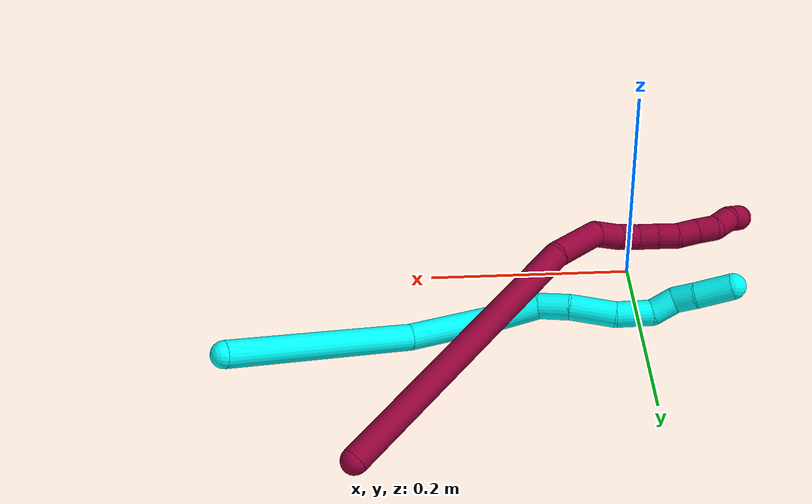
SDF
<sdf version="1.7">
 <world name="default">
  <model name="3">
   <static>0</static>
   <link name="3">
    <collision name="collision-cylinder-e_1_1_4">
     <pose>-0.007227 0.005141 -0.089758 -3.08438 -0.080208 1.9027</pose>
     <geometry><cylinder><radius>0.0125</radius><length>0.18039</length></cylinder></geometry>
     <surface>
      <friction><ode><mu>1.16</mu><mu2>1.16</mu2><slip1>0</slip1><slip2>0</slip2></ode></friction>
      <contact><ode><kp>1e+06</kp><kd>1</kd><max_vel>0</max_vel><min_depth>0.001</min_depth></ode></contact>
     </surface>
    </collision>
    <visual name="visual-cylinder-e_1_1_4">
     <pose>-0.007227 0.005141 -0.089758 -3.08438 -0.080208 1.9027</pose>
     <geometry><cylinder><radius>0.0125</radius><length>0.18039</length></cylinder></geometry>
     <material><ambient>0.003922 1 0.996078 1</ambient></material>
    </visual>
    <collision name="collision-cylinder-e_2_4_5">
     <pose>-0.030739 0.012932 -0.219505 -3.07539 -0.385987 2.80589</pose>
     <geometry><cylinder><radius>0.0125</radius><length>0.08652</length></cylinder></geometry>
     <surface>
      <friction><ode><mu>1.16</mu><mu2>1.16</mu2><slip1>0</slip1><slip2>0</slip2></ode></friction>
      <contact><ode><kp>1e+06</kp><kd>1</kd><max_vel>0</max_vel><min_depth>0.001</min_depth></ode></contact>
     </surface>
    </collision>
    <visual name="visual-cylinder-e_2_4_5">
     <pose>-0.030739 0.012932 -0.219505 -3.07539 -0.385987 2.80589</pose>
     <geometry><cylinder><radius>0.0125</radius><length>0.08652</length></cylinder></geometry>
     <material><ambient>0.003922 1 0.996078 1</ambient></material>
    </visual>
    <collision name="collision-cylinder-e_3_5_6">
     <pose>-0.060938 0.018299 -0.275225 -2.97066 -0.716851 2.69192</pose>
     <geometry><cylinder><radius>0.0125</radius><length>0.042349</length></cylinder></geometry>
     <surface>
      <friction><ode><mu>1.16</mu><mu2>1.16</mu2><slip1>0</slip1><slip2>0</slip2></ode></friction>
      <contact><ode><kp>1e+06</kp><kd>1</kd><max_vel>0</max_vel><min_depth>0.001</min_depth></ode></contact>
     </surface>
    </collision>
    <visual name="visual-cylinder-e_3_5_6">
     <pose>-0.060938 0.018299 -0.275225 -2.97066 -0.716851 2.69192</pose>
     <geometry><cylinder><radius>0.0125</radius><length>0.042349</length></cylinder></geometry>
     <material><ambient>0.003922 1 0.996078 1</ambient></material>
    </visual>
    <collision name="collision-cylinder-e_4_6_7">
     <pose>-0.084 0.027866 -0.300869 -2.53684 -0.649417 1.64688</pose>
     <geometry><cylinder><radius>0.0125</radius><length>0.030262</length></cylinder></geometry>
     <surface>
      <friction><ode><mu>1.16</mu><mu2>1.16</mu2><slip1>0</slip1><slip2>0</slip2></ode></friction>
      <contact><ode><kp>1e+06</kp><kd>1</kd><max_vel>0</max_vel><min_depth>0.001</min_depth></ode></contact>
     </surface>
    </collision>
    <visual name="visual-cylinder-e_4_6_7">
     <pose>-0.084 0.027866 -0.300869 -2.53684 -0.649417 1.64688</pose>
     <geometry><cylinder><radius>0.0125</radius><length>0.030262</length></cylinder></geometry>
     <material><ambient>0.003922 1 0.996078 1</ambient></material>
    </visual>
    <collision name="collision-cylinder-e_5_7_8">
     <pose>-0.103274 0.04606 -0.326653 -2.52106 -0.478754 1.30125</pose>
     <geometry><cylinder><radius>0.0125</radius><length>0.043957</length></cylinder></geometry>
     <surface>
      <friction><ode><mu>1.16</mu><mu2>1.16</mu2><slip1>0</slip1><slip2>0</slip2></ode></friction>
      <contact><ode><kp>1e+06</kp><kd>1</kd><max_vel>0</max_vel><min_depth>0.001</min_depth></ode></contact>
     </surface>
    </collision>
    <visual name="visual-cylinder-e_5_7_8">
     <pose>-0.103274 0.04606 -0.326653 -2.52106 -0.478754 1.30125</pose>
     <geometry><cylinder><radius>0.0125</radius><length>0.043957</length></cylinder></geometry>
     <material><ambient>0.003922 1 0.996078 1</ambient></material>
    </visual>
    <collision name="collision-cylinder-e_6_8_9">
     <pose>-0.12203 0.062608 -0.356837 -2.79285 -0.51559 1.96356</pose>
     <geometry><cylinder><radius>0.0125</radius><length>0.035011</length></cylinder></geometry>
     <surface>
      <friction><ode><mu>1.16</mu><mu2>1.16</mu2><slip1>0</slip1><slip2>0</slip2></ode></friction>
      <contact><ode><kp>1e+06</kp><kd>1</kd><max_vel>0</max_vel><min_depth>0.001</min_depth></ode></contact>
     </surface>
    </collision>
    <visual name="visual-cylinder-e_6_8_9">
     <pose>-0.12203 0.062608 -0.356837 -2.79285 -0.51559 1.96356</pose>
     <geometry><cylinder><radius>0.0125</radius><length>0.035011</length></cylinder></geometry>
     <material><ambient>0.003922 1 0.996078 1</ambient></material>
    </visual>
    <collision name="collision-cylinder-e_7_9_10">
     <pose>-0.139934 0.06681 -0.379211 3.01791 -0.851327 -2.87013</pose>
     <geometry><cylinder><radius>0.0125</radius><length>0.024655</length></cylinder></geometry>
     <surface>
      <friction><ode><mu>1.16</mu><mu2>1.16</mu2><slip1>0</slip1><slip2>0</slip2></ode></friction>
      <contact><ode><kp>1e+06</kp><kd>1</kd><max_vel>0</max_vel><min_depth>0.001</min_depth></ode></contact>
     </surface>
    </collision>
    <visual name="visual-cylinder-e_7_9_10">
     <pose>-0.139934 0.06681 -0.379211 3.01791 -0.851327 -2.87013</pose>
     <geometry><cylinder><radius>0.0125</radius><length>0.024655</length></cylinder></geometry>
     <material><ambient>0.003922 1 0.996078 1</ambient></material>
    </visual>
    <collision name="collision-cylinder-e_8_10_11">
     <pose>-0.158354 0.069106 -0.392086 -2.54075 -1.00299 2.11291</pose>
     <geometry><cylinder><radius>0.0125</radius><length>0.021701</length></cylinder></geometry>
     <surface>
      <friction><ode><mu>1.16</mu><mu2>1.16</mu2><slip1>0</slip1><slip2>0</slip2></ode></friction>
      <contact><ode><kp>1e+06</kp><kd>1</kd><max_vel>0</max_vel><min_depth>0.001</min_depth></ode></contact>
     </surface>
    </collision>
    <visual name="visual-cylinder-e_8_10_11">
     <pose>-0.158354 0.069106 -0.392086 -2.54075 -1.00299 2.11291</pose>
     <geometry><cylinder><radius>0.0125</radius><length>0.021701</length></cylinder></geometry>
     <material><ambient>0.003922 1 0.996078 1</ambient></material>
    </visual>
    <collision name="collision-cylinder-e_9_11_2">
     <pose>-0.181442 0.076539 -0.406777 -2.74525 -0.915804 2.36777</pose>
     <geometry><cylinder><radius>0.0125</radius><length>0.035155</length></cylinder></geometry>
     <surface>
      <friction><ode><mu>1.16</mu><mu2>1.16</mu2><slip1>0</slip1><slip2>0</slip2></ode></friction>
      <contact><ode><kp>1e+06</kp><kd>1</kd><max_vel>0</max_vel><min_depth>0.001</min_depth></ode></contact>
     </surface>
    </collision>
    <visual name="visual-cylinder-e_9_11_2">
     <pose>-0.181442 0.076539 -0.406777 -2.74525 -0.915804 2.36777</pose>
     <geometry><cylinder><radius>0.0125</radius><length>0.035155</length></cylinder></geometry>
     <material><ambient>0.003922 1 0.996078 1</ambient></material>
    </visual>
    <collision name="collision-sphere-2">
     <pose>-0.195382 0.080672 -0.416654 0 -0 0</pose>
     <geometry><sphere><radius>0.0125</radius></sphere></geometry>
     <surface>
      <friction><ode><mu>1.16</mu><mu2>1.16</mu2><slip1>0</slip1><slip2>0</slip2></ode></friction>
      <contact><ode><kp>1e+06</kp><kd>1</kd><max_vel>0</max_vel><min_depth>0.001</min_depth></ode></contact>
     </surface>
    </collision>
    <visual name="visual-sphere-2">
     <pose>-0.195382 0.080672 -0.416654 0 -0 0</pose>
     <geometry><sphere><radius>0.0125</radius></sphere></geometry>
     <material><ambient>0.003922 1 0.996078 1</ambient></material>
    </visual>
    <collision name="collision-sphere-11">
     <pose>-0.167502 0.072405 -0.3969 0 -0 0</pose>
     <geometry><sphere><radius>0.0125</radius></sphere></geometry>
     <surface>
      <friction><ode><mu>1.16</mu><mu2>1.16</mu2><slip1>0</slip1><slip2>0</slip2></ode></friction>
      <contact><ode><kp>1e+06</kp><kd>1</kd><max_vel>0</max_vel><min_depth>0.001</min_depth></ode></contact>
     </surface>
    </collision>
    <visual name="visual-sphere-11">
     <pose>-0.167502 0.072405 -0.3969 0 -0 0</pose>
     <geometry><sphere><radius>0.0125</radius></sphere></geometry>
     <material><ambient>0.003922 1 0.996078 1</ambient></material>
    </visual>
    <collision name="collision-sphere-10">
     <pose>-0.149206 0.065807 -0.387273 0 -0 0</pose>
     <geometry><sphere><radius>0.0125</radius></sphere></geometry>
     <surface>
      <friction><ode><mu>1.16</mu><mu2>1.16</mu2><slip1>0</slip1><slip2>0</slip2></ode></friction>
      <contact><ode><kp>1e+06</kp><kd>1</kd><max_vel>0</max_vel><min_depth>0.001</min_depth></ode></contact>
     </surface>
    </collision>
    <visual name="visual-sphere-10">
     <pose>-0.149206 0.065807 -0.387273 0 -0 0</pose>
     <geometry><sphere><radius>0.0125</radius></sphere></geometry>
     <material><ambient>0.003922 1 0.996078 1</ambient></material>
    </visual>
    <collision name="collision-sphere-9">
     <pose>-0.130661 0.067812 -0.37115 0 -0 0</pose>
     <geometry><sphere><radius>0.0125</radius></sphere></geometry>
     <surface>
      <friction><ode><mu>1.16</mu><mu2>1.16</mu2><slip1>0</slip1><slip2>0</slip2></ode></friction>
      <contact><ode><kp>1e+06</kp><kd>1</kd><max_vel>0</max_vel><min_depth>0.001</min_depth></ode></contact>
     </surface>
    </collision>
    <visual name="visual-sphere-9">
     <pose>-0.130661 0.067812 -0.37115 0 -0 0</pose>
     <geometry><sphere><radius>0.0125</radius></sphere></geometry>
     <material><ambient>0.003922 1 0.996078 1</ambient></material>
    </visual>
    <collision name="collision-sphere-4">
     <pose>-0.014453 0.010281 -0.179516 0 -0 0</pose>
     <geometry><sphere><radius>0.0125</radius></sphere></geometry>
     <surface>
      <friction><ode><mu>1.16</mu><mu2>1.16</mu2><slip1>0</slip1><slip2>0</slip2></ode></friction>
      <contact><ode><kp>1e+06</kp><kd>1</kd><max_vel>0</max_vel><min_depth>0.001</min_depth></ode></contact>
     </surface>
    </collision>
    <visual name="visual-sphere-4">
     <pose>-0.014453 0.010281 -0.179516 0 -0 0</pose>
     <geometry><sphere><radius>0.0125</radius></sphere></geometry>
     <material><ambient>0.003922 1 0.996078 1</ambient></material>
    </visual>
    <collision name="collision-sphere-1">
     <geometry><sphere><radius>0.0125</radius></sphere></geometry>
     <surface>
      <friction><ode><mu>1.16</mu><mu2>1.16</mu2><slip1>0</slip1><slip2>0</slip2></ode></friction>
      <contact><ode><kp>1e+06</kp><kd>1</kd><max_vel>0</max_vel><min_depth>0.001</min_depth></ode></contact>
     </surface>
    </collision>
    <visual name="visual-sphere-1">
     <geometry><sphere><radius>0.0125</radius></sphere></geometry>
     <material><ambient>0.003922 1 0.996078 1</ambient></material>
    </visual>
    <collision name="collision-sphere-8">
     <pose>-0.113399 0.057403 -0.342524 0 -0 0</pose>
     <geometry><sphere><radius>0.0125</radius></sphere></geometry>
     <surface>
      <friction><ode><mu>1.16</mu><mu2>1.16</mu2><slip1>0</slip1><slip2>0</slip2></ode></friction>
      <contact><ode><kp>1e+06</kp><kd>1</kd><max_vel>0</max_vel><min_depth>0.001</min_depth></ode></contact>
     </surface>
    </collision>
    <visual name="visual-sphere-8">
     <pose>-0.113399 0.057403 -0.342524 0 -0 0</pose>
     <geometry><sphere><radius>0.0125</radius></sphere></geometry>
     <material><ambient>0.003922 1 0.996078 1</ambient></material>
    </visual>
    <collision name="collision-sphere-5">
     <pose>-0.047026 0.015584 -0.259495 0 -0 0</pose>
     <geometry><sphere><radius>0.0125</radius></sphere></geometry>
     <surface>
      <friction><ode><mu>1.16</mu><mu2>1.16</mu2><slip1>0</slip1><slip2>0</slip2></ode></friction>
      <contact><ode><kp>1e+06</kp><kd>1</kd><max_vel>0</max_vel><min_depth>0.001</min_depth></ode></contact>
     </surface>
    </collision>
    <visual name="visual-sphere-5">
     <pose>-0.047026 0.015584 -0.259495 0 -0 0</pose>
     <geometry><sphere><radius>0.0125</radius></sphere></geometry>
     <material><ambient>0.003922 1 0.996078 1</ambient></material>
    </visual>
    <collision name="collision-sphere-6">
     <pose>-0.07485 0.021014 -0.290956 0 -0 0</pose>
     <geometry><sphere><radius>0.0125</radius></sphere></geometry>
     <surface>
      <friction><ode><mu>1.16</mu><mu2>1.16</mu2><slip1>0</slip1><slip2>0</slip2></ode></friction>
      <contact><ode><kp>1e+06</kp><kd>1</kd><max_vel>0</max_vel><min_depth>0.001</min_depth></ode></contact>
     </surface>
    </collision>
    <visual name="visual-sphere-6">
     <pose>-0.07485 0.021014 -0.290956 0 -0 0</pose>
     <geometry><sphere><radius>0.0125</radius></sphere></geometry>
     <material><ambient>0.003922 1 0.996078 1</ambient></material>
    </visual>
    <collision name="collision-sphere-7">
     <pose>-0.093149 0.034717 -0.310783 0 -0 0</pose>
     <geometry><sphere><radius>0.0125</radius></sphere></geometry>
     <surface>
      <friction><ode><mu>1.16</mu><mu2>1.16</mu2><slip1>0</slip1><slip2>0</slip2></ode></friction>
      <contact><ode><kp>1e+06</kp><kd>1</kd><max_vel>0</max_vel><min_depth>0.001</min_depth></ode></contact>
     </surface>
    </collision>
    <visual name="visual-sphere-7">
     <pose>-0.093149 0.034717 -0.310783 0 -0 0</pose>
     <geometry><sphere><radius>0.0125</radius></sphere></geometry>
     <material><ambient>0.003922 1 0.996078 1</ambient></material>
    </visual>
    <inertial>
     <pose>-0.062326 0.027437 -0.229908 0 -0 0</pose>
     <mass>0.5</mass>
     <inertia><ixx>0.000269</ixx><ixy>0</ixy><ixz>0</ixz><iyy>0.000749</iyy><iyz>0</iyz><izz>8e-06</izz></inertia>
    </inertial>
   </link>
   <pose>0.378259 0.179839 0.061389 -0.96788 0.980886 -0.522202</pose>
  </model>
  <model name="8">
   <static>0</static>
   <link name="8">
    <collision name="collision-cylinder-e_1_1_4">
     <pose>-0.120593 -0.000783 -0.064549 3.12947 -1.0793 -3.12135</pose>
     <geometry><cylinder><radius>0.0125</radius><length>0.273569</length></cylinder></geometry>
     <surface>
      <friction><ode><mu>1.16</mu><mu2>1.16</mu2><slip1>0</slip1><slip2>0</slip2></ode></friction>
      <contact><ode><kp>1e+06</kp><kd>1</kd><max_vel>0</max_vel><min_depth>0.001</min_depth></ode></contact>
     </surface>
    </collision>
    <visual name="visual-cylinder-e_1_1_4">
     <pose>-0.120593 -0.000783 -0.064549 3.12947 -1.0793 -3.12135</pose>
     <geometry><cylinder><radius>0.0125</radius><length>0.273569</length></cylinder></geometry>
     <material><ambient>0.584314 0 0.227451 1</ambient></material>
    </visual>
    <collision name="collision-cylinder-e_2_4_5">
     <pose>-0.264717 0.007941 -0.142307 -2.51772 -0.96573 2.03871</pose>
     <geometry><cylinder><radius>0.0125</radius><length>0.057219</length></cylinder></geometry>
     <surface>
      <friction><ode><mu>1.16</mu><mu2>1.16</mu2><slip1>0</slip1><slip2>0</slip2></ode></friction>
      <contact><ode><kp>1e+06</kp><kd>1</kd><max_vel>0</max_vel><min_depth>0.001</min_depth></ode></contact>
     </surface>
    </collision>
    <visual name="visual-cylinder-e_2_4_5">
     <pose>-0.264717 0.007941 -0.142307 -2.51772 -0.96573 2.03871</pose>
     <geometry><cylinder><radius>0.0125</radius><length>0.057219</length></cylinder></geometry>
     <material><ambient>0.584314 0 0.227451 1</ambient></material>
    </visual>
    <collision name="collision-cylinder-e_3_5_6">
     <pose>-0.298859 0.02577 -0.15608 -1.63867 -0.904641 0.959153</pose>
     <geometry><cylinder><radius>0.0125</radius><length>0.026996</length></cylinder></geometry>
     <surface>
      <friction><ode><mu>1.16</mu><mu2>1.16</mu2><slip1>0</slip1><slip2>0</slip2></ode></friction>
      <contact><ode><kp>1e+06</kp><kd>1</kd><max_vel>0</max_vel><min_depth>0.001</min_depth></ode></contact>
     </surface>
    </collision>
    <visual name="visual-cylinder-e_3_5_6">
     <pose>-0.298859 0.02577 -0.15608 -1.63867 -0.904641 0.959153</pose>
     <geometry><cylinder><radius>0.0125</radius><length>0.026996</length></cylinder></geometry>
     <material><ambient>0.584314 0 0.227451 1</ambient></material>
    </visual>
    <collision name="collision-cylinder-e_4_6_7">
     <pose>-0.318751 0.039398 -0.156679 -1.57702 -1.05143 1.05683</pose>
     <geometry><cylinder><radius>0.0125</radius><length>0.021379</length></cylinder></geometry>
     <surface>
      <friction><ode><mu>1.16</mu><mu2>1.16</mu2><slip1>0</slip1><slip2>0</slip2></ode></friction>
      <contact><ode><kp>1e+06</kp><kd>1</kd><max_vel>0</max_vel><min_depth>0.001</min_depth></ode></contact>
     </surface>
    </collision>
    <visual name="visual-cylinder-e_4_6_7">
     <pose>-0.318751 0.039398 -0.156679 -1.57702 -1.05143 1.05683</pose>
     <geometry><cylinder><radius>0.0125</radius><length>0.021379</length></cylinder></geometry>
     <material><ambient>0.584314 0 0.227451 1</ambient></material>
    </visual>
    <collision name="collision-cylinder-e_5_7_8">
     <pose>-0.337572 0.047432 -0.153864 -0.763984 -1.17877 0.524848</pose>
     <geometry><cylinder><radius>0.0125</radius><length>0.020648</length></cylinder></geometry>
     <surface>
      <friction><ode><mu>1.16</mu><mu2>1.16</mu2><slip1>0</slip1><slip2>0</slip2></ode></friction>
      <contact><ode><kp>1e+06</kp><kd>1</kd><max_vel>0</max_vel><min_depth>0.001</min_depth></ode></contact>
     </surface>
    </collision>
    <visual name="visual-cylinder-e_5_7_8">
     <pose>-0.337572 0.047432 -0.153864 -0.763984 -1.17877 0.524848</pose>
     <geometry><cylinder><radius>0.0125</radius><length>0.020648</length></cylinder></geometry>
     <material><ambient>0.584314 0 0.227451 1</ambient></material>
    </visual>
    <collision name="collision-cylinder-e_6_8_9">
     <pose>-0.356311 0.052859 -0.148124 -0.750915 -1.16473 0.507936</pose>
     <geometry><cylinder><radius>0.0125</radius><length>0.020027</length></cylinder></geometry>
     <surface>
      <friction><ode><mu>1.16</mu><mu2>1.16</mu2><slip1>0</slip1><slip2>0</slip2></ode></friction>
      <contact><ode><kp>1e+06</kp><kd>1</kd><max_vel>0</max_vel><min_depth>0.001</min_depth></ode></contact>
     </surface>
    </collision>
    <visual name="visual-cylinder-e_6_8_9">
     <pose>-0.356311 0.052859 -0.148124 -0.750915 -1.16473 0.507936</pose>
     <geometry><cylinder><radius>0.0125</radius><length>0.020027</length></cylinder></geometry>
     <material><ambient>0.584314 0 0.227451 1</ambient></material>
    </visual>
    <collision name="collision-cylinder-e_7_9_10">
     <pose>-0.375363 0.057556 -0.14463 -1.27767 -1.36204 1.0836</pose>
     <geometry><cylinder><radius>0.0125</radius><length>0.020143</length></cylinder></geometry>
     <surface>
      <friction><ode><mu>1.16</mu><mu2>1.16</mu2><slip1>0</slip1><slip2>0</slip2></ode></friction>
      <contact><ode><kp>1e+06</kp><kd>1</kd><max_vel>0</max_vel><min_depth>0.001</min_depth></ode></contact>
     </surface>
    </collision>
    <visual name="visual-cylinder-e_7_9_10">
     <pose>-0.375363 0.057556 -0.14463 -1.27767 -1.36204 1.0836</pose>
     <geometry><cylinder><radius>0.0125</radius><length>0.020143</length></cylinder></geometry>
     <material><ambient>0.584314 0 0.227451 1</ambient></material>
    </visual>
    <collision name="collision-cylinder-e_8_10_11">
     <pose>-0.39492 0.061725 -0.142916 -1.09777 -1.32463 0.890018</pose>
     <geometry><cylinder><radius>0.0125</radius><length>0.020012</length></cylinder></geometry>
     <surface>
      <friction><ode><mu>1.16</mu><mu2>1.16</mu2><slip1>0</slip1><slip2>0</slip2></ode></friction>
      <contact><ode><kp>1e+06</kp><kd>1</kd><max_vel>0</max_vel><min_depth>0.001</min_depth></ode></contact>
     </surface>
    </collision>
    <visual name="visual-cylinder-e_8_10_11">
     <pose>-0.39492 0.061725 -0.142916 -1.09777 -1.32463 0.890018</pose>
     <geometry><cylinder><radius>0.0125</radius><length>0.020012</length></cylinder></geometry>
     <material><ambient>0.584314 0 0.227451 1</ambient></material>
    </visual>
    <collision name="collision-cylinder-e_9_11_12">
     <pose>-0.413616 0.065771 -0.145765 -2.69928 -1.11733 2.45104</pose>
     <geometry><cylinder><radius>0.0125</radius><length>0.020006</length></cylinder></geometry>
     <surface>
      <friction><ode><mu>1.16</mu><mu2>1.16</mu2><slip1>0</slip1><slip2>0</slip2></ode></friction>
      <contact><ode><kp>1e+06</kp><kd>1</kd><max_vel>0</max_vel><min_depth>0.001</min_depth></ode></contact>
     </surface>
    </collision>
    <visual name="visual-cylinder-e_9_11_12">
     <pose>-0.413616 0.065771 -0.145765 -2.69928 -1.11733 2.45104</pose>
     <geometry><cylinder><radius>0.0125</radius><length>0.020006</length></cylinder></geometry>
     <material><ambient>0.584314 0 0.227451 1</ambient></material>
    </visual>
    <collision name="collision-cylinder-e_10_12_2">
     <pose>-0.429885 0.073434 -0.153411 -2.13785 -0.814756 1.33276</pose>
     <geometry><cylinder><radius>0.0125</radius><length>0.020003</length></cylinder></geometry>
     <surface>
      <friction><ode><mu>1.16</mu><mu2>1.16</mu2><slip1>0</slip1><slip2>0</slip2></ode></friction>
      <contact><ode><kp>1e+06</kp><kd>1</kd><max_vel>0</max_vel><min_depth>0.001</min_depth></ode></contact>
     </surface>
    </collision>
    <visual name="visual-cylinder-e_10_12_2">
     <pose>-0.429885 0.073434 -0.153411 -2.13785 -0.814756 1.33276</pose>
     <geometry><cylinder><radius>0.0125</radius><length>0.020003</length></cylinder></geometry>
     <material><ambient>0.584314 0 0.227451 1</ambient></material>
    </visual>
    <collision name="collision-sphere-2">
     <pose>-0.437161 0.079222 -0.157097 0 -0 0</pose>
     <geometry><sphere><radius>0.0125</radius></sphere></geometry>
     <surface>
      <friction><ode><mu>1.16</mu><mu2>1.16</mu2><slip1>0</slip1><slip2>0</slip2></ode></friction>
      <contact><ode><kp>1e+06</kp><kd>1</kd><max_vel>0</max_vel><min_depth>0.001</min_depth></ode></contact>
     </surface>
    </collision>
    <visual name="visual-sphere-2">
     <pose>-0.437161 0.079222 -0.157097 0 -0 0</pose>
     <geometry><sphere><radius>0.0125</radius></sphere></geometry>
     <material><ambient>0.584314 0 0.227451 1</ambient></material>
    </visual>
    <collision name="collision-sphere-12">
     <pose>-0.422608 0.067647 -0.149725 0 -0 0</pose>
     <geometry><sphere><radius>0.0125</radius></sphere></geometry>
     <surface>
      <friction><ode><mu>1.16</mu><mu2>1.16</mu2><slip1>0</slip1><slip2>0</slip2></ode></friction>
      <contact><ode><kp>1e+06</kp><kd>1</kd><max_vel>0</max_vel><min_depth>0.001</min_depth></ode></contact>
     </surface>
    </collision>
    <visual name="visual-sphere-12">
     <pose>-0.422608 0.067647 -0.149725 0 -0 0</pose>
     <geometry><sphere><radius>0.0125</radius></sphere></geometry>
     <material><ambient>0.584314 0 0.227451 1</ambient></material>
    </visual>
    <collision name="collision-sphere-11">
     <pose>-0.404624 0.063896 -0.141805 0 -0 0</pose>
     <geometry><sphere><radius>0.0125</radius></sphere></geometry>
     <surface>
      <friction><ode><mu>1.16</mu><mu2>1.16</mu2><slip1>0</slip1><slip2>0</slip2></ode></friction>
      <contact><ode><kp>1e+06</kp><kd>1</kd><max_vel>0</max_vel><min_depth>0.001</min_depth></ode></contact>
     </surface>
    </collision>
    <visual name="visual-sphere-11">
     <pose>-0.404624 0.063896 -0.141805 0 -0 0</pose>
     <geometry><sphere><radius>0.0125</radius></sphere></geometry>
     <material><ambient>0.584314 0 0.227451 1</ambient></material>
    </visual>
    <collision name="collision-sphere-10">
     <pose>-0.385216 0.059554 -0.144026 0 -0 0</pose>
     <geometry><sphere><radius>0.0125</radius></sphere></geometry>
     <surface>
      <friction><ode><mu>1.16</mu><mu2>1.16</mu2><slip1>0</slip1><slip2>0</slip2></ode></friction>
      <contact><ode><kp>1e+06</kp><kd>1</kd><max_vel>0</max_vel><min_depth>0.001</min_depth></ode></contact>
     </surface>
    </collision>
    <visual name="visual-sphere-10">
     <pose>-0.385216 0.059554 -0.144026 0 -0 0</pose>
     <geometry><sphere><radius>0.0125</radius></sphere></geometry>
     <material><ambient>0.584314 0 0.227451 1</ambient></material>
    </visual>
    <collision name="collision-sphere-9">
     <pose>-0.36551 0.055558 -0.145233 0 -0 0</pose>
     <geometry><sphere><radius>0.0125</radius></sphere></geometry>
     <surface>
      <friction><ode><mu>1.16</mu><mu2>1.16</mu2><slip1>0</slip1><slip2>0</slip2></ode></friction>
      <contact><ode><kp>1e+06</kp><kd>1</kd><max_vel>0</max_vel><min_depth>0.001</min_depth></ode></contact>
     </surface>
    </collision>
    <visual name="visual-sphere-9">
     <pose>-0.36551 0.055558 -0.145233 0 -0 0</pose>
     <geometry><sphere><radius>0.0125</radius></sphere></geometry>
     <material><ambient>0.584314 0 0.227451 1</ambient></material>
    </visual>
    <collision name="collision-sphere-4">
     <pose>-0.241186 -0.001565 -0.129099 0 -0 0</pose>
     <geometry><sphere><radius>0.0125</radius></sphere></geometry>
     <surface>
      <friction><ode><mu>1.16</mu><mu2>1.16</mu2><slip1>0</slip1><slip2>0</slip2></ode></friction>
      <contact><ode><kp>1e+06</kp><kd>1</kd><max_vel>0</max_vel><min_depth>0.001</min_depth></ode></contact>
     </surface>
    </collision>
    <visual name="visual-sphere-4">
     <pose>-0.241186 -0.001565 -0.129099 0 -0 0</pose>
     <geometry><sphere><radius>0.0125</radius></sphere></geometry>
     <material><ambient>0.584314 0 0.227451 1</ambient></material>
    </visual>
    <collision name="collision-sphere-1">
     <geometry><sphere><radius>0.0125</radius></sphere></geometry>
     <surface>
      <friction><ode><mu>1.16</mu><mu2>1.16</mu2><slip1>0</slip1><slip2>0</slip2></ode></friction>
      <contact><ode><kp>1e+06</kp><kd>1</kd><max_vel>0</max_vel><min_depth>0.001</min_depth></ode></contact>
     </surface>
    </collision>
    <visual name="visual-sphere-1">
     <geometry><sphere><radius>0.0125</radius></sphere></geometry>
     <material><ambient>0.584314 0 0.227451 1</ambient></material>
    </visual>
    <collision name="collision-sphere-8">
     <pose>-0.347112 0.050161 -0.151016 0 -0 0</pose>
     <geometry><sphere><radius>0.0125</radius></sphere></geometry>
     <surface>
      <friction><ode><mu>1.16</mu><mu2>1.16</mu2><slip1>0</slip1><slip2>0</slip2></ode></friction>
      <contact><ode><kp>1e+06</kp><kd>1</kd><max_vel>0</max_vel><min_depth>0.001</min_depth></ode></contact>
     </surface>
    </collision>
    <visual name="visual-sphere-8">
     <pose>-0.347112 0.050161 -0.151016 0 -0 0</pose>
     <geometry><sphere><radius>0.0125</radius></sphere></geometry>
     <material><ambient>0.584314 0 0.227451 1</ambient></material>
    </visual>
    <collision name="collision-sphere-5">
     <pose>-0.288247 0.017448 -0.155515 0 -0 0</pose>
     <geometry><sphere><radius>0.0125</radius></sphere></geometry>
     <surface>
      <friction><ode><mu>1.16</mu><mu2>1.16</mu2><slip1>0</slip1><slip2>0</slip2></ode></friction>
      <contact><ode><kp>1e+06</kp><kd>1</kd><max_vel>0</max_vel><min_depth>0.001</min_depth></ode></contact>
     </surface>
    </collision>
    <visual name="visual-sphere-5">
     <pose>-0.288247 0.017448 -0.155515 0 -0 0</pose>
     <geometry><sphere><radius>0.0125</radius></sphere></geometry>
     <material><ambient>0.584314 0 0.227451 1</ambient></material>
    </visual>
    <collision name="collision-sphere-6">
     <pose>-0.309471 0.034092 -0.156646 0 -0 0</pose>
     <geometry><sphere><radius>0.0125</radius></sphere></geometry>
     <surface>
      <friction><ode><mu>1.16</mu><mu2>1.16</mu2><slip1>0</slip1><slip2>0</slip2></ode></friction>
      <contact><ode><kp>1e+06</kp><kd>1</kd><max_vel>0</max_vel><min_depth>0.001</min_depth></ode></contact>
     </surface>
    </collision>
    <visual name="visual-sphere-6">
     <pose>-0.309471 0.034092 -0.156646 0 -0 0</pose>
     <geometry><sphere><radius>0.0125</radius></sphere></geometry>
     <material><ambient>0.584314 0 0.227451 1</ambient></material>
    </visual>
    <collision name="collision-sphere-7">
     <pose>-0.328031 0.044703 -0.156712 0 -0 0</pose>
     <geometry><sphere><radius>0.0125</radius></sphere></geometry>
     <surface>
      <friction><ode><mu>1.16</mu><mu2>1.16</mu2><slip1>0</slip1><slip2>0</slip2></ode></friction>
      <contact><ode><kp>1e+06</kp><kd>1</kd><max_vel>0</max_vel><min_depth>0.001</min_depth></ode></contact>
     </surface>
    </collision>
    <visual name="visual-sphere-7">
     <pose>-0.328031 0.044703 -0.156712 0 -0 0</pose>
     <geometry><sphere><radius>0.0125</radius></sphere></geometry>
     <material><ambient>0.584314 0 0.227451 1</ambient></material>
    </visual>
    <inertial>
     <pose>-0.218926 0.017991 -0.102532 0 -0 0</pose>
     <mass>0.5</mass>
     <inertia>
      <ixx>-0.000849</ixx>
      <ixy>0</ixy>
      <ixz>0</ixz>
      <iyy>0.001745</iyy>
      <iyz>0</iyz>
      <izz>0.001526</izz>
     </inertia>
    </inertial>
   </link>
   <pose>0.266147 0.266545 0.014275 -1.56738 0.271642 0.293537</pose>
  </model>
 </world>
</sdf>
